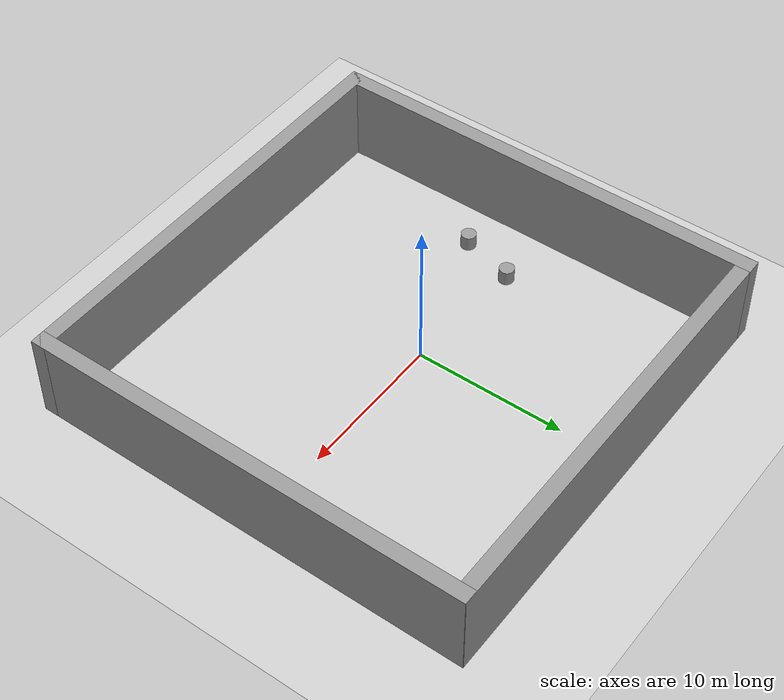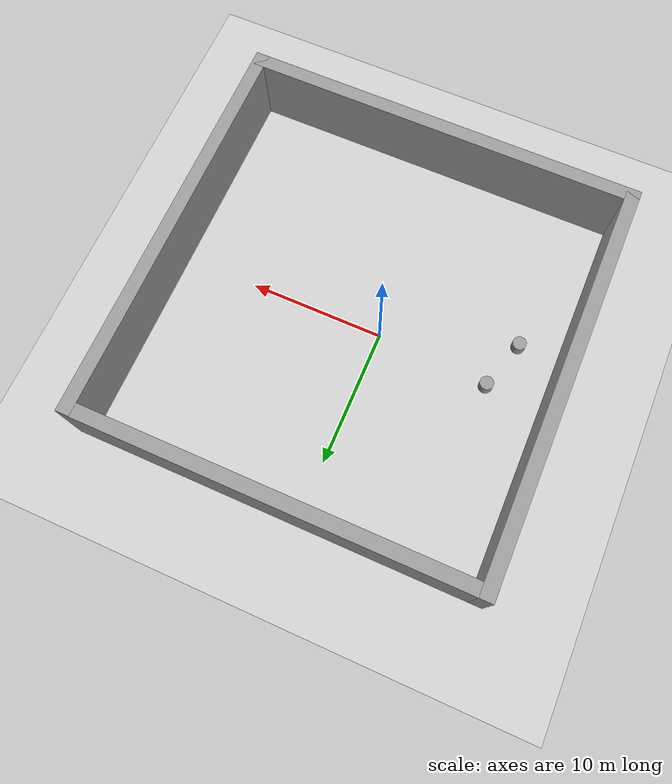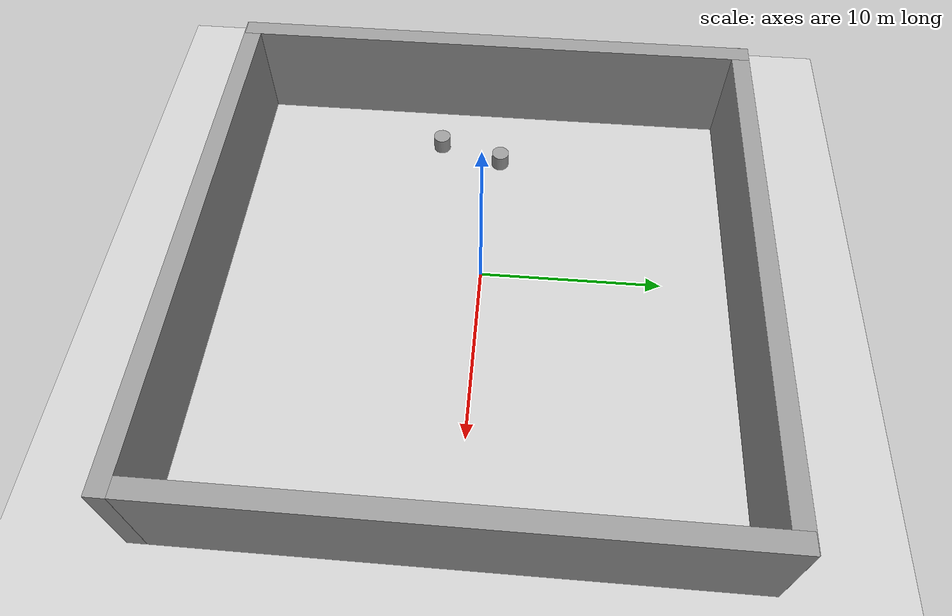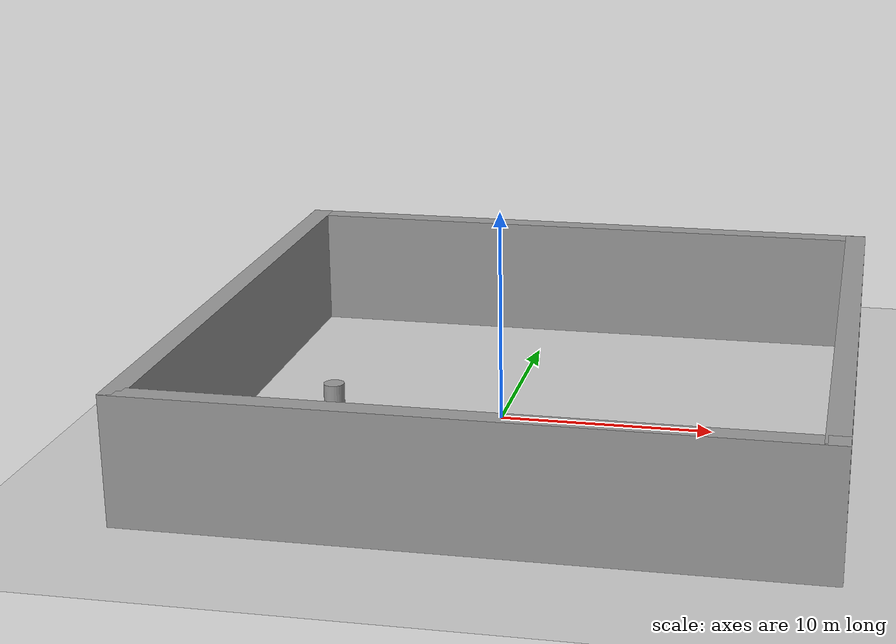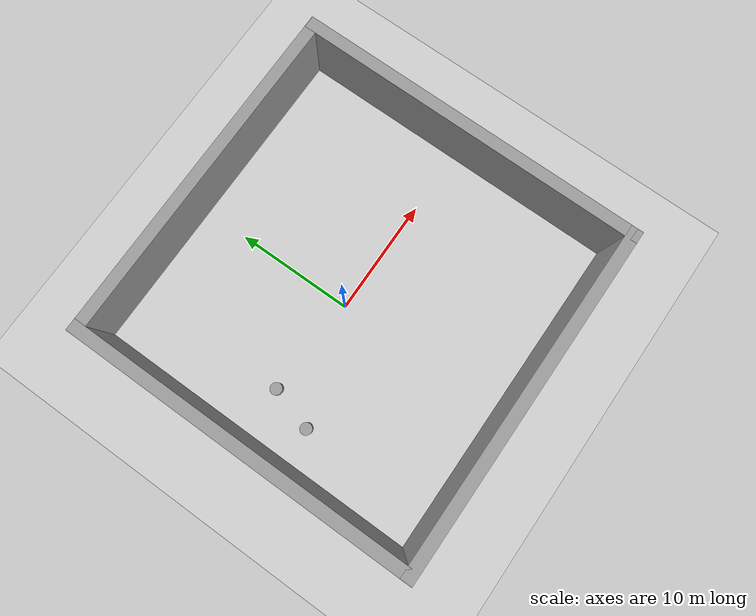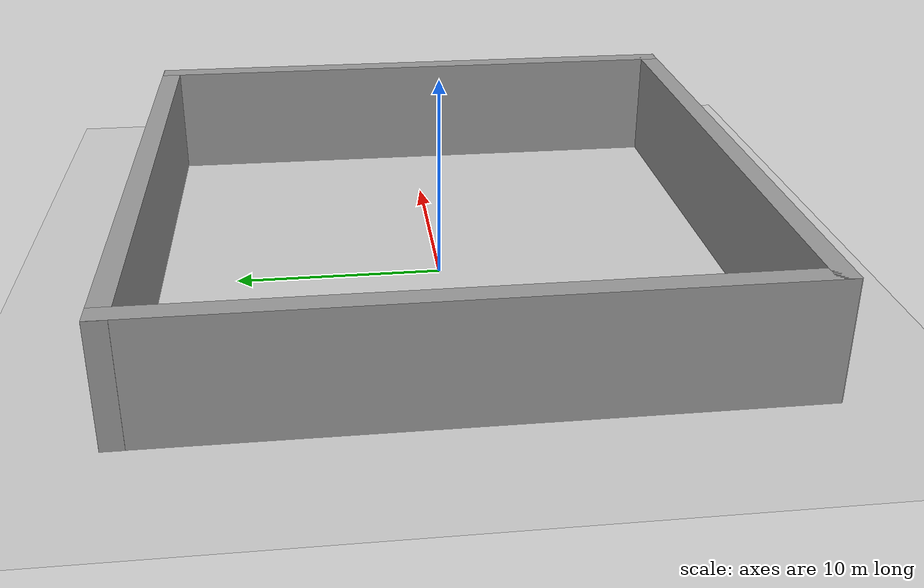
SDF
<sdf version="1.6">
 <world name="default">
  <light name="sun" type="directional">
   <pose>0 0 10 0 -0 0</pose>
   <diffuse>0.8 0.8 0.8 1</diffuse>
   <specular>0.2 0.2 0.2 1</specular>
   <attenuation>
    <range>1000</range>
    <constant>0.9</constant>
    <linear>0.01</linear>
    <quadratic>0.001</quadratic>
   </attenuation>
   <direction>-0.5 0.1 -0.9</direction>
   <spot><inner_angle>0</inner_angle><outer_angle>0</outer_angle><falloff>0</falloff></spot>
  </light>
  <model name="ground_plane">
   <static>1</static>
   <link name="link">
    <collision name="collision">
     <geometry><plane><normal>0 0 1</normal><size>100 100</size></plane></geometry>
     <surface>
      <contact><collide_bitmask>65535</collide_bitmask></contact>
      <friction><ode><mu>100</mu><mu2>50</mu2></ode></friction>
     </surface>
    </collision>
    <visual name="visual">
     <cast_shadows>0</cast_shadows>
     <geometry><plane><normal>0 0 1</normal><size>100 100</size></plane></geometry>
     <material>
      <script><uri>file://media/materials/scripts/gazebo.material</uri><name>Gazebo/Grey</name></script>
     </material>
    </visual>
   </link>
  </model>
  <gravity>0 0 -9.8</gravity>
  <magnetic_field>0 0 0</magnetic_field>
  <atmosphere type="adiabatic"/>
  <physics type="ode">
   <max_step_size>0.001</max_step_size>
   <real_time_factor>1</real_time_factor>
   <real_time_update_rate>1000</real_time_update_rate>
  </physics>
  <scene><ambient>0.4 0.4 0.4 1</ambient><background>0.7 0.7 0.7 1</background><shadows>1</shadows></scene>
  <audio><device>default</device></audio>
  <spherical_coordinates>
   <surface_model>EARTH_WGS84</surface_model>
   <latitude_deg>0</latitude_deg>
   <longitude_deg>0</longitude_deg>
   <elevation>0</elevation>
   <heading_deg>0</heading_deg>
  </spherical_coordinates>
  <model name="Building">
   <link name="link_0">
    <inertial>
     <mass>172.335</mass>
     <inertia><ixx>494.854</ixx><ixy>0</ixy><ixz>0</ixz><iyy>13228.2</iyy><iyz>0</iyz><izz>12762.1</izz></inertia>
    </inertial>
    <pose>3.45436 14.7587 0.787948 0 -0 0</pose>
    <visual name="visual">
     <geometry><box><size>29.7934 1 5.78425</size></box></geometry>
     <material>
      <lighting>1</lighting>
      <script><uri>file://media/materials/scripts/gazebo.material</uri><name>Gazebo/Grey</name></script>
      <shader type="pixel"/>
     </material>
    </visual>
    <collision name="collision">
     <geometry><box><size>29.7934 1 5.78425</size></box></geometry>
     <surface>
      <friction>
       <ode><mu>1</mu><mu2>1</mu2><fdir1>0 0 0</fdir1><slip1>0</slip1><slip2>0</slip2></ode>
       <torsional>
        <coefficient>1</coefficient>
        <patch_radius>0</patch_radius>
        <surface_radius>0</surface_radius>
        <use_patch_radius>1</use_patch_radius>
        <ode><slip>0</slip></ode>
       </torsional>
      </friction>
      <bounce><restitution_coefficient>0</restitution_coefficient><threshold>1e+06</threshold></bounce>
      <contact>
       <collide_without_contact>0</collide_without_contact>
       <collide_without_contact_bitmask>1</collide_without_contact_bitmask>
       <collide_bitmask>1</collide_bitmask>
       <ode>
        <soft_cfm>0</soft_cfm>
        <soft_erp>0.2</soft_erp>
        <kp>1e+13</kp>
        <kd>1</kd>
        <max_vel>0.01</max_vel>
        <min_depth>0</min_depth>
       </ode>
       <bullet>
        <split_impulse>1</split_impulse>
        <split_impulse_penetration_threshold>-0.01</split_impulse_penetration_threshold>
        <soft_cfm>0</soft_cfm>
        <soft_erp>0.2</soft_erp>
        <kp>1e+13</kp>
        <kd>1</kd>
       </bullet>
      </contact>
     </surface>
    </collision>
   </link>
   <link name="link_0_clone">
    <inertial>
     <mass>172.335</mass>
     <inertia><ixx>494.854</ixx><ixy>0</ixy><ixz>0</ixz><iyy>13228.2</iyy><iyz>0</iyz><izz>12762.1</izz></inertia>
    </inertial>
    <pose>3.47972 -14.0713 0.787953 0 -0 0</pose>
    <visual name="visual">
     <geometry><box><size>29.7934 1 5.78425</size></box></geometry>
     <material>
      <lighting>1</lighting>
      <script><uri>file://media/materials/scripts/gazebo.material</uri><name>Gazebo/Grey</name></script>
      <shader type="pixel"/>
     </material>
    </visual>
    <collision name="collision">
     <geometry><box><size>29.7934 1 5.78425</size></box></geometry>
     <surface>
      <friction>
       <ode><mu>1</mu><mu2>1</mu2><fdir1>0 0 0</fdir1><slip1>0</slip1><slip2>0</slip2></ode>
       <torsional>
        <coefficient>1</coefficient>
        <patch_radius>0</patch_radius>
        <surface_radius>0</surface_radius>
        <use_patch_radius>1</use_patch_radius>
        <ode><slip>0</slip></ode>
       </torsional>
      </friction>
      <bounce><restitution_coefficient>0</restitution_coefficient><threshold>1e+06</threshold></bounce>
      <contact>
       <collide_without_contact>0</collide_without_contact>
       <collide_without_contact_bitmask>1</collide_without_contact_bitmask>
       <collide_bitmask>1</collide_bitmask>
       <ode>
        <soft_cfm>0</soft_cfm>
        <soft_erp>0.2</soft_erp>
        <kp>1e+13</kp>
        <kd>1</kd>
        <max_vel>0.01</max_vel>
        <min_depth>0</min_depth>
       </ode>
       <bullet>
        <split_impulse>1</split_impulse>
        <split_impulse_penetration_threshold>-0.01</split_impulse_penetration_threshold>
        <soft_cfm>0</soft_cfm>
        <soft_erp>0.2</soft_erp>
        <kp>1e+13</kp>
        <kd>1</kd>
       </bullet>
      </contact>
     </surface>
    </collision>
   </link>
   <link name="link_0_clone_0">
    <inertial>
     <mass>172.335</mass>
     <inertia><ixx>494.854</ixx><ixy>0</ixy><ixz>0</ixz><iyy>13228.2</iyy><iyz>0</iyz><izz>12762.1</izz></inertia>
    </inertial>
    <pose>-10.9307 0.365114 0.787953 0 0 -1.5708</pose>
    <visual name="visual">
     <geometry><box><size>29.7934 1 5.78425</size></box></geometry>
     <material>
      <lighting>1</lighting>
      <script><uri>file://media/materials/scripts/gazebo.material</uri><name>Gazebo/Grey</name></script>
      <shader type="pixel"/>
     </material>
    </visual>
    <collision name="collision">
     <geometry><box><size>29.7934 1 5.78425</size></box></geometry>
     <surface>
      <friction>
       <ode><mu>1</mu><mu2>1</mu2><fdir1>0 0 0</fdir1><slip1>0</slip1><slip2>0</slip2></ode>
       <torsional>
        <coefficient>1</coefficient>
        <patch_radius>0</patch_radius>
        <surface_radius>0</surface_radius>
        <use_patch_radius>1</use_patch_radius>
        <ode><slip>0</slip></ode>
       </torsional>
      </friction>
      <bounce><restitution_coefficient>0</restitution_coefficient><threshold>1e+06</threshold></bounce>
      <contact>
       <collide_without_contact>0</collide_without_contact>
       <collide_without_contact_bitmask>1</collide_without_contact_bitmask>
       <collide_bitmask>1</collide_bitmask>
       <ode>
        <soft_cfm>0</soft_cfm>
        <soft_erp>0.2</soft_erp>
        <kp>1e+13</kp>
        <kd>1</kd>
        <max_vel>0.01</max_vel>
        <min_depth>0</min_depth>
       </ode>
       <bullet>
        <split_impulse>1</split_impulse>
        <split_impulse_penetration_threshold>-0.01</split_impulse_penetration_threshold>
        <soft_cfm>0</soft_cfm>
        <soft_erp>0.2</soft_erp>
        <kp>1e+13</kp>
        <kd>1</kd>
       </bullet>
      </contact>
     </surface>
    </collision>
   </link>
   <link name="link_0_clone_0_clone">
    <inertial>
     <mass>172.335</mass>
     <inertia><ixx>494.854</ixx><ixy>0</ixy><ixz>0</ixz><iyy>13228.2</iyy><iyz>0</iyz><izz>12762.1</izz></inertia>
    </inertial>
    <pose>17.8738 0.330498 0.787953 0 0 -1.5708</pose>
    <visual name="visual">
     <geometry><box><size>29.7934 1 5.78425</size></box></geometry>
     <material>
      <lighting>1</lighting>
      <script><uri>file://media/materials/scripts/gazebo.material</uri><name>Gazebo/Grey</name></script>
      <shader type="pixel"/>
     </material>
    </visual>
    <collision name="collision">
     <geometry><box><size>29.7934 1 5.78425</size></box></geometry>
     <surface>
      <friction>
       <ode><mu>1</mu><mu2>1</mu2><fdir1>0 0 0</fdir1><slip1>0</slip1><slip2>0</slip2></ode>
       <torsional>
        <coefficient>1</coefficient>
        <patch_radius>0</patch_radius>
        <surface_radius>0</surface_radius>
        <use_patch_radius>1</use_patch_radius>
        <ode><slip>0</slip></ode>
       </torsional>
      </friction>
      <bounce><restitution_coefficient>0</restitution_coefficient><threshold>1e+06</threshold></bounce>
      <contact>
       <collide_without_contact>0</collide_without_contact>
       <collide_without_contact_bitmask>1</collide_without_contact_bitmask>
       <collide_bitmask>1</collide_bitmask>
       <ode>
        <soft_cfm>0</soft_cfm>
        <soft_erp>0.2</soft_erp>
        <kp>1e+13</kp>
        <kd>1</kd>
        <max_vel>0.01</max_vel>
        <min_depth>0</min_depth>
       </ode>
       <bullet>
        <split_impulse>1</split_impulse>
        <split_impulse_penetration_threshold>-0.01</split_impulse_penetration_threshold>
        <soft_cfm>0</soft_cfm>
        <soft_erp>0.2</soft_erp>
        <kp>1e+13</kp>
        <kd>1</kd>
       </bullet>
      </contact>
     </surface>
    </collision>
   </link>
   <link name="link_1">
    <inertial>
     <mass>1</mass>
     <inertia><ixx>0.145833</ixx><ixy>0</ixy><ixz>0</ixz><iyy>0.145833</iyy><iyz>0</iyz><izz>0.125</izz></inertia>
    </inertial>
    <pose>-7.50067 -2.52448 -1.57591 0 -0 0</pose>
    <visual name="visual">
     <geometry><cylinder><radius>0.5</radius><length>1</length></cylinder></geometry>
     <material>
      <lighting>1</lighting>
      <script><uri>file://media/materials/scripts/gazebo.material</uri><name>Gazebo/Grey</name></script>
      <shader type="pixel"/>
     </material>
    </visual>
    <collision name="collision">
     <geometry><cylinder><radius>0.5</radius><length>1</length></cylinder></geometry>
     <surface>
      <friction>
       <ode><mu>1</mu><mu2>1</mu2><fdir1>0 0 0</fdir1><slip1>0</slip1><slip2>0</slip2></ode>
       <torsional>
        <coefficient>1</coefficient>
        <patch_radius>0</patch_radius>
        <surface_radius>0</surface_radius>
        <use_patch_radius>1</use_patch_radius>
        <ode><slip>0</slip></ode>
       </torsional>
      </friction>
      <bounce><restitution_coefficient>0</restitution_coefficient><threshold>1e+06</threshold></bounce>
      <contact>
       <collide_without_contact>0</collide_without_contact>
       <collide_without_contact_bitmask>1</collide_without_contact_bitmask>
       <collide_bitmask>1</collide_bitmask>
       <ode>
        <soft_cfm>0</soft_cfm>
        <soft_erp>0.2</soft_erp>
        <kp>1e+13</kp>
        <kd>1</kd>
        <max_vel>0.01</max_vel>
        <min_depth>0</min_depth>
       </ode>
       <bullet>
        <split_impulse>1</split_impulse>
        <split_impulse_penetration_threshold>-0.01</split_impulse_penetration_threshold>
        <soft_cfm>0</soft_cfm>
        <soft_erp>0.2</soft_erp>
        <kp>1e+13</kp>
        <kd>1</kd>
       </bullet>
      </contact>
     </surface>
    </collision>
   </link>
   <link name="link_2">
    <inertial>
     <mass>1</mass>
     <inertia><ixx>0.145833</ixx><ixy>0</ixy><ixz>0</ixz><iyy>0.145833</iyy><iyz>0</iyz><izz>0.125</izz></inertia>
    </inertial>
    <pose>-6.37647 1.14144 -1.57591 0 -0 0</pose>
    <visual name="visual">
     <geometry><cylinder><radius>0.5</radius><length>1</length></cylinder></geometry>
     <material>
      <lighting>1</lighting>
      <script><uri>file://media/materials/scripts/gazebo.material</uri><name>Gazebo/Grey</name></script>
      <shader type="pixel"/>
     </material>
    </visual>
    <collision name="collision">
     <geometry><cylinder><radius>0.5</radius><length>1</length></cylinder></geometry>
     <surface>
      <friction>
       <ode><mu>1</mu><mu2>1</mu2><fdir1>0 0 0</fdir1><slip1>0</slip1><slip2>0</slip2></ode>
       <torsional>
        <coefficient>1</coefficient>
        <patch_radius>0</patch_radius>
        <surface_radius>0</surface_radius>
        <use_patch_radius>1</use_patch_radius>
        <ode><slip>0</slip></ode>
       </torsional>
      </friction>
      <bounce><restitution_coefficient>0</restitution_coefficient><threshold>1e+06</threshold></bounce>
      <contact>
       <collide_without_contact>0</collide_without_contact>
       <collide_without_contact_bitmask>1</collide_without_contact_bitmask>
       <collide_bitmask>1</collide_bitmask>
       <ode>
        <soft_cfm>0</soft_cfm>
        <soft_erp>0.2</soft_erp>
        <kp>1e+13</kp>
        <kd>1</kd>
        <max_vel>0.01</max_vel>
        <min_depth>0</min_depth>
       </ode>
       <bullet>
        <split_impulse>1</split_impulse>
        <split_impulse_penetration_threshold>-0.01</split_impulse_penetration_threshold>
        <soft_cfm>0</soft_cfm>
        <soft_erp>0.2</soft_erp>
        <kp>1e+13</kp>
        <kd>1</kd>
       </bullet>
      </contact>
     </surface>
    </collision>
   </link>
   <static>0</static>
   <pose>-1.95658 -0.602012 2.07591 0 -0 0</pose>
  </model>
 </world>
</sdf>
